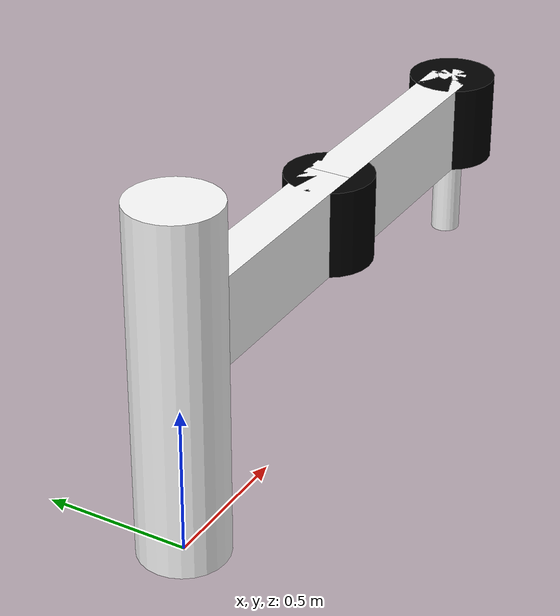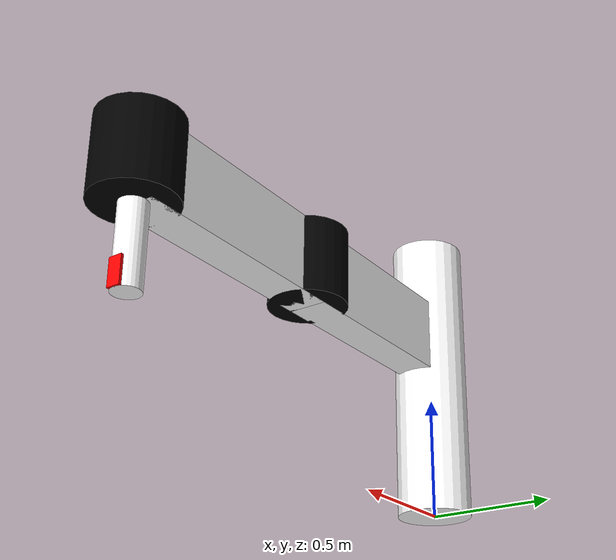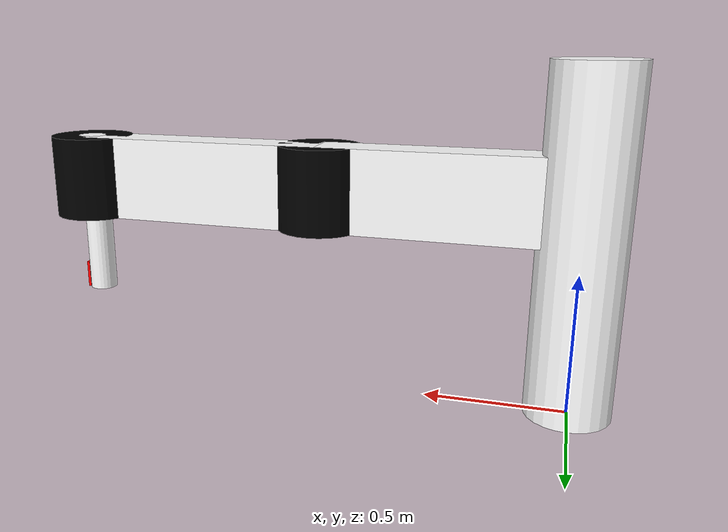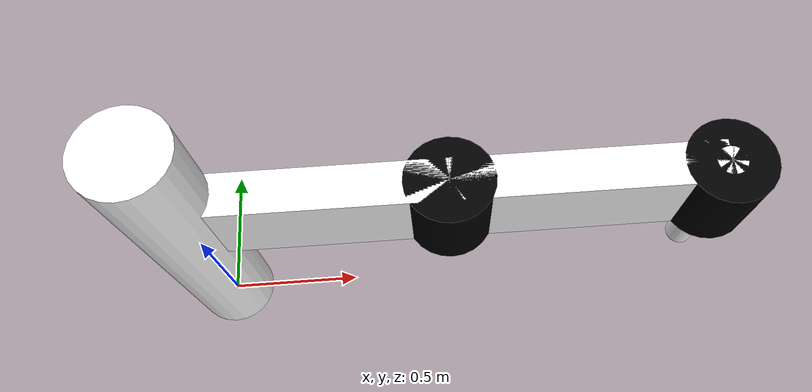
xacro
<?xml version="1.0"?>
<!-- Scara Manipulator -->
<robot name="scararobot" xmlns:xacro="http://www.ros.org/wiki/xacro">

  <xacro:property name="mass" value="1" />
  <xacro:property name="base_height" value="1.2" />
  <xacro:property name="base_width" value="0.3" />
  <xacro:property name="wrist_point" value="0.01" />
  <xacro:property name="first_joint_angle" value="2.6" />
  <xacro:property name="second_joint_angle" value="2.6" />

  <joint name="fixed" type="fixed">
    <parent link="world"/>
    <child link="base_link"/>
    <origin xyz="0 0 0"/>
  </joint>

  <link name="world"/>

  <link name="base_link">
    <visual>
      <geometry>
        <cylinder length="${base_height}" radius="${base_width/2}"/>
      </geometry>
      <origin rpy="0 0 0" xyz="0 0 ${base_height/2}"/>
      <material name="White">
        <color rgba="255.0 255.0 255.0 1.0"/>
      </material>
    </visual>

    <collision>
      <geometry>
        <cylinder length="${base_height}" radius="${base_width/2}" />
      </geometry>
    </collision>

    <inertial>
      <mass value="${mass}"/>
      <inertia
      	  ixx="${mass / 12.0 * (base_width*base_width + base_height*base_height)}" ixy="0.0" ixz="0.0"
	        iyy="${mass / 12.0 * (base_height*base_height + base_width*base_width)}" iyz="0.0"
	        izz="${mass / 12.0 * (base_width*base_width + base_width*base_width)}"/>
    </inertial>
  </link>

  <link name="first_link">
    <visual>
      <geometry>
        <box size="${base_height * 0.75} ${base_width/2} ${base_width}"/>
      </geometry>
      <origin rpy="0 0 0" xyz="${base_height * 0.375} 0 0"/>
      <material name="White" />
    </visual>

    <collision>
      <geometry>
        <box size="${base_height * 0.75} ${base_width/2} ${base_width}"/>
      </geometry>
    </collision>

    <inertial>
      <mass value="${mass}"/>
      <inertia
	      ixx="${mass / 12.0 * ((base_width/2)*(base_width/2) + base_width*base_width)}" ixy="0.0" ixz="0.0"
	      iyy="${mass / 12.0 * ((base_height * 0.75)*(base_height * 0.75) + base_width*base_width)}" iyz="0.0"
	      izz="${mass / 12.0 * ((base_height * 0.75)*(base_height * 0.75) + (base_width/2)*(base_width/2))}"/>

    </inertial>
  </link>

  <link name="first_joint">
    <visual>
      <geometry>
        <cylinder length="${base_height * 0.25}" radius="${base_width/2}"/>
      </geometry>
      <origin rpy="0 0 0" xyz="0 0 0"/>
      <material name="Black">
        <color rgba="0.0 0.0 0.0 1.0"/>
      </material>
    </visual>

    <collision>
      <geometry>
        <cylinder length="${base_height * 0.25}" radius="${base_width/2}"/>
      </geometry>
    </collision>

    <inertial>
      <mass value="${mass}"/>
      <inertia
      	  ixx="${mass / 12.0 * (base_width*base_width + (base_height * 0.25)*(base_height * 0.25))}" ixy="0.0" ixz="0.0"
	        iyy="${mass / 12.0 * ((base_height * 0.25)*(base_height * 0.25) + base_width*base_width)}" iyz="0.0"
	        izz="${mass / 12.0 * (base_width*base_width + base_width*base_width)}"/>
    </inertial>
  </link>

  <link name="second_link">
    <visual>
      <geometry>
        <box size="${base_height * 0.75} ${base_width/2} ${base_width}"/>
      </geometry>
      <origin rpy="0 0 0" xyz="${base_height * 0.375} 0 0"/>
      <material name="White" />
    </visual>

    <collision>
      <geometry>
        <box size="${base_height * 0.75} ${base_width/2} ${base_width}"/>
      </geometry>
    </collision>

    <inertial>
      <mass value="${mass}"/>
      <inertia
	      ixx="${mass / 12.0 * ((base_width/2)*(base_width/2) + base_width*base_width)}" ixy="0.0" ixz="0.0"
	      iyy="${mass / 12.0 * ((base_height * 0.75)*(base_height * 0.75) + base_width*base_width)}" iyz="0.0"
	      izz="${mass / 12.0 * ((base_height * 0.75)*(base_height * 0.75) + (base_width/2)*(base_width/2))}"/>

    </inertial>
  </link>

  <link name="second_joint">
<visual>
      <geometry>
        <cylinder length="${base_height * 0.25}" radius="${base_width/2}"/>
      </geometry>
      <origin rpy="0 0 0" xyz="0 0 0"/>
      <material name="Black">
        <color rgba="0.0 0.0 0.0 1.0"/>
      </material>
    </visual>

    <collision>
      <geometry>
        <cylinder length="${base_height * 0.25}" radius="${base_width/2}"/>
      </geometry>
    </collision>

    <inertial>
      <mass value="${mass}"/>
      <inertia
      	  ixx="${mass / 12.0 * (base_width*base_width + (base_height * 0.25)*(base_height * 0.25))}" ixy="0.0" ixz="0.0"
	        iyy="${mass / 12.0 * ((base_height * 0.25)*(base_height * 0.25) + base_width*base_width)}" iyz="0.0"
	        izz="${mass / 12.0 * (base_width*base_width + base_width*base_width)}"/>
    </inertial>
  </link>

  <link name="third_link">
    <visual>
      <geometry>
        <cylinder length="${base_height * 0.5}" radius="${base_width/6}" />
      </geometry>
      <origin rpy="0 0 0" xyz="0 0 ${-base_height * 0.125}"/>
      <material name="White"/>
    </visual>

    <collision>
      <geometry>
        <cylinder length="${base_height * 0.5}" radius="${base_width/6}"/>
      </geometry>
    </collision>

    <inertial>
      <mass value="${mass}"/>
      <inertia
      	  ixx="${mass / 12.0 * ((base_width/3)*(base_width/3) + (base_height * 0.5)*(base_height * 0.5))}" ixy="0.0" ixz="0.0"
	        iyy="${mass / 12.0 * ((base_height * 0.5)*(base_height * 0.5) + (base_width/3)*(base_width/3))}" iyz="0.0"
	        izz="${mass / 12.0 * ((base_width/3)*(base_width/3) + (base_width/3)*(base_width/3))}"/>
    </inertial>
  </link>

  <link name="wrist_link">
    <visual>
      <geometry>
        <box size="${wrist_point} ${wrist_point*5} ${wrist_point*10}"/>
      </geometry>
      <origin rpy="0 0 0" xyz="${base_width/6} 0 ${wrist_point*5}"/>
      <material name="Red">
        <color rgba="255.0 0.0 0.0 1.0"/>
      </material>
    </visual>

    <collision>
      <geometry>
        <box size="${wrist_point} ${wrist_point*5} ${wrist_point*10}"/>
      </geometry>
    </collision>

    <inertial>
      <mass value="${mass}"/>
      <inertia
	      ixx="${mass / 12.0 * ((wrist_point*5)*(wrist_point*5) + (wrist_point*10)*(wrist_point*10))}" ixy="0.0" ixz="0.0"
	      iyy="${mass / 12.0 * (wrist_point*wrist_point + (wrist_point*10)*(wrist_point*10))}" iyz="0.0"
	      izz="${mass / 12.0 * (wrist_point*wrist_point + (wrist_point*5)*(wrist_point*5))}"/>
    </inertial>
  </link>

  <joint name="base_to_first_link" type="revolute">
    <axis xyz="0 0 1"/>
    <limit effort="1000.0" lower="${-first_joint_angle}" upper="${first_joint_angle}" velocity="0.5"/>
    <parent link="base_link"/>
      <child link="first_link"/>
    <origin rpy="0 0 0" xyz="0 0 ${base_height * 0.625}"/>
  </joint>

  <joint name="first_link_to_first_joint" type="revolute">
    <axis xyz="0 0 1"/>
    <limit effort="1000.0" lower="${-second_joint_angle}" upper="${second_joint_angle}" velocity="0.5"/>
    <parent link="first_link"/>
      <child link="first_joint"/>
    <origin rpy="0 0 0" xyz="${base_height * 0.75} 0 0"/>
  </joint>

  <joint name="first_joint_to_second_link" type="fixed">
    <parent link="first_joint"/>
      <child link="second_link"/>
    <origin xyz="0 0 0"/>
  </joint>

  <joint name="second_link_to_second_joint" type="continuous">
    <axis xyz="0 0 1"/>
    <parent link="second_link"/>
      <child link="second_joint"/>
    <origin rpy="0 0 0" xyz="${base_height * 0.75} 0 0"/>
  </joint>

  <joint name="second_joint_to_third_joint" type="prismatic">
    <axis xyz="0 0 1"/>
    <limit effort="1000.0" lower="${-base_height * 0.25}" upper="0" velocity="0.5"/>
    <parent link="second_joint"/>
      <child link="third_link"/>
    <origin rpy="0 0 0" xyz="0 0 0"/>
  </joint>

  <joint name="third_link_to_wrist_link" type="fixed">
    <parent link="third_link"/>
      <child link="wrist_link"/>
    <origin xyz="0 0 ${-base_height * 0.375}"/>
  </joint>

  <transmission name="tran1">
    <type>transmission_interface/SimpleTransmission</type>
    <joint name="base_to_first_link">
      <hardwareInterface>hardware_interface/EffortJointInterface</hardwareInterface>
    </joint>
    <actuator name="base_to_first_motor">
      <hardwareInterface>hardware_interface/EffortJointInterface</hardwareInterface>
      <mechanicalReduction>1</mechanicalReduction>
    </actuator>
  </transmission>

  <transmission name="tran2">
    <type>transmission_interface/SimpleTransmission</type>
    <joint name="first_link_to_first_joint">
      <hardwareInterface>hardware_interface/EffortJointInterface</hardwareInterface>
    </joint>
    <actuator name="first_link_to_first_motor">
      <hardwareInterface>hardware_interface/EffortJointInterface</hardwareInterface>
      <mechanicalReduction>1</mechanicalReduction>
    </actuator>
  </transmission>

  <transmission name="tran3">
    <type>transmission_interface/SimpleTransmission</type>
    <joint name="second_link_to_second_joint">
      <hardwareInterface>hardware_interface/EffortJointInterface</hardwareInterface>
    </joint>
    <actuator name="second_link_to_second_motor">
      <hardwareInterface>hardware_interface/EffortJointInterface</hardwareInterface>
      <mechanicalReduction>1</mechanicalReduction>
    </actuator>
  </transmission>

  <transmission name="tran4">
    <type>transmission_interface/SimpleTransmission</type>
    <joint name="second_joint_to_third_joint">
      <hardwareInterface>hardware_interface/EffortJointInterface</hardwareInterface>
    </joint>
    <actuator name="second_joint_to_third_motor">
      <hardwareInterface>hardware_interface/EffortJointInterface</hardwareInterface>
      <mechanicalReduction>1</mechanicalReduction>
    </actuator>
  </transmission>

</robot>
